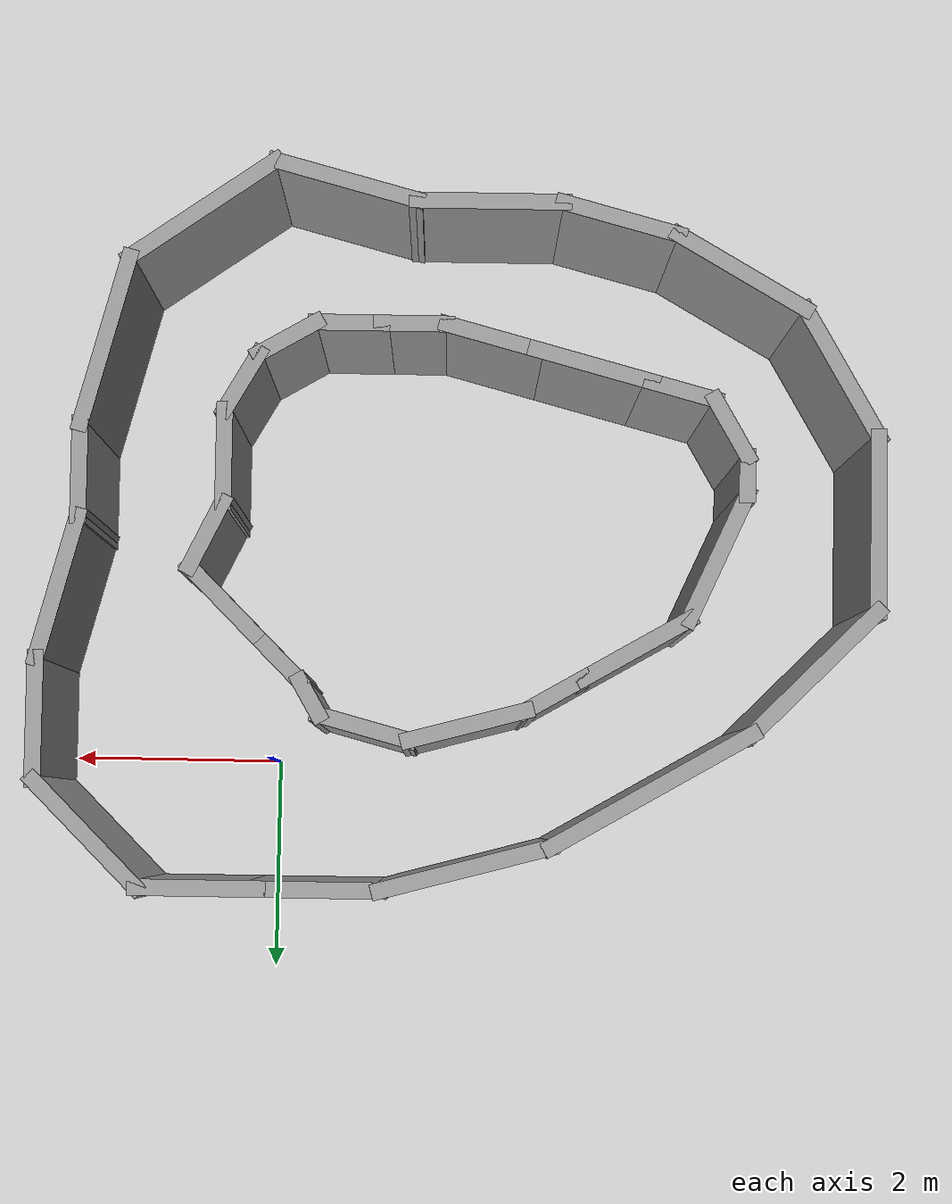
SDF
<sdf version="1.7">
 <world name="default">
  <light name="sun" type="directional">
   <pose>0 0 10 0 -0 0</pose>
   <diffuse>0.8 0.8 0.8 1</diffuse>
   <specular>0.2 0.2 0.2 1</specular>
   <attenuation>
    <range>1000</range>
    <constant>0.9</constant>
    <linear>0.01</linear>
    <quadratic>0.001</quadratic>
   </attenuation>
   <direction>-0.5 0.1 -0.9</direction>
   <spot><inner_angle>0</inner_angle><outer_angle>0</outer_angle><falloff>0</falloff></spot>
  </light>
  <model name="ground_plane">
   <static>1</static>
   <link name="link">
    <collision name="collision">
     <geometry><plane><normal>0 0 1</normal><size>100 100</size></plane></geometry>
     <surface><friction><ode><mu>100</mu><mu2>50</mu2></ode></friction></surface>
    </collision>
    <visual name="visual">
     <cast_shadows>0</cast_shadows>
     <geometry><plane><normal>0 0 1</normal><size>100 100</size></plane></geometry>
     <material>
      <script><uri>file://media/materials/scripts/gazebo.material</uri><name>Gazebo/Grey</name></script>
     </material>
    </visual>
   </link>
  </model>
  <gravity>0 0 -9.8</gravity>
  <magnetic_field>6e-06 2.3e-05 -4.2e-05</magnetic_field>
  <atmosphere type="adiabatic"/>
  <physics type="ode">
   <max_step_size>0.001</max_step_size>
   <real_time_factor>1</real_time_factor>
   <real_time_update_rate>1000</real_time_update_rate>
  </physics>
  <scene><ambient>0.4 0.4 0.4 1</ambient><background>0.7 0.7 0.7 1</background><shadows>1</shadows></scene>
  <audio><device>default</device></audio>
  <spherical_coordinates>
   <surface_model>EARTH_WGS84</surface_model>
   <latitude_deg>0</latitude_deg>
   <longitude_deg>0</longitude_deg>
   <elevation>0</elevation>
   <heading_deg>0</heading_deg>
  </spherical_coordinates>
  <model name="my_building_0">
   <pose>-1.72697 -2.13842 0 0 -0 0</pose>
   <link name="Wall_49">
    <collision name="Wall_49_Collision">
     <geometry><box><size>1.75 0.15 2.5</size></box></geometry>
     <pose>0 0 1.25 0 -0 0</pose>
    </collision>
    <visual name="Wall_49_Visual">
     <pose>0 0 1.25 0 -0 0</pose>
     <geometry><box><size>1.75 0.15 2.5</size></box></geometry>
     <material>
      <script><uri>file://media/materials/scripts/gazebo.material</uri><name>Gazebo/Grey</name></script>
      <ambient>1 1 1 1</ambient>
     </material>
     <meta><layer>0</layer></meta>
    </visual>
    <pose>3.26859 -1.64532 0 0 -0 1.309</pose>
   </link>
   <link name="Wall_50">
    <collision name="Wall_50_Collision">
     <geometry><box><size>1 0.15 2.5</size></box></geometry>
     <pose>0 0 1.25 0 -0 0</pose>
    </collision>
    <visual name="Wall_50_Visual">
     <pose>0 0 1.25 0 -0 0</pose>
     <geometry><box><size>1 0.15 2.5</size></box></geometry>
     <material>
      <script><uri>file://media/materials/scripts/gazebo.material</uri><name>Gazebo/Grey</name></script>
      <ambient>1 1 1 1</ambient>
     </material>
     <meta><layer>0</layer></meta>
    </visual>
    <pose>3.47564 -0.44758 0 0 -0 1.5708</pose>
   </link>
   <link name="Wall_51">
    <collision name="Wall_51_Collision">
     <geometry><box><size>1.5 0.15 2.5</size></box></geometry>
     <pose>0 0 1.25 0 -0 0</pose>
    </collision>
    <visual name="Wall_51_Visual">
     <pose>0 0 1.25 0 -0 0</pose>
     <geometry><box><size>1.5 0.15 2.5</size></box></geometry>
     <material>
      <script><uri>file://media/materials/scripts/gazebo.material</uri><name>Gazebo/Grey</name></script>
      <ambient>1 1 1 1</ambient>
     </material>
     <meta><layer>0</layer></meta>
    </visual>
    <pose>3.65035 0.62942 0 0 -0 1.309</pose>
   </link>
   <link name="Wall_52">
    <collision name="Wall_52_Collision">
     <geometry><box><size>1.25 0.15 2.5</size></box></geometry>
     <pose>0 0 1.25 0 -0 0</pose>
    </collision>
    <visual name="Wall_52_Visual">
     <pose>0 0 1.25 0 -0 0</pose>
     <geometry><box><size>1.25 0.15 2.5</size></box></geometry>
     <material>
      <script><uri>file://media/materials/scripts/gazebo.material</uri><name>Gazebo/Grey</name></script>
      <ambient>1 1 1 1</ambient>
     </material>
     <meta><layer>0</layer></meta>
    </visual>
    <pose>3.82505 1.83142 0 0 -0 1.5708</pose>
   </link>
   <link name="Wall_53">
    <collision name="Wall_53_Collision">
     <geometry><box><size>1.5 0.15 2.5</size></box></geometry>
     <pose>0 0 1.25 0 -0 0</pose>
    </collision>
    <visual name="Wall_53_Visual">
     <pose>0 0 1.25 0 -0 0</pose>
     <geometry><box><size>1.5 0.15 2.5</size></box></geometry>
     <material>
      <script><uri>file://media/materials/scripts/gazebo.material</uri><name>Gazebo/Grey</name></script>
      <ambient>1 1 1 1</ambient>
     </material>
     <meta><layer>0</layer></meta>
    </visual>
    <pose>3.34775 2.85872 0 0 -0 2.35619</pose>
   </link>
   <link name="Wall_54">
    <collision name="Wall_54_Collision">
     <geometry><box><size>1.25 0.15 2.5</size></box></geometry>
     <pose>0 0 1.25 0 -0 0</pose>
    </collision>
    <visual name="Wall_54_Visual">
     <pose>0 0 1.25 0 -0 0</pose>
     <geometry><box><size>1.25 0.15 2.5</size></box></geometry>
     <material>
      <script><uri>file://media/materials/scripts/gazebo.material</uri><name>Gazebo/Grey</name></script>
      <ambient>1 1 1 1</ambient>
     </material>
     <meta><layer>0</layer></meta>
    </visual>
    <pose>2.32046 3.33601 0 0 -0 3.14159</pose>
   </link>
   <link name="Wall_55">
    <collision name="Wall_55_Collision">
     <geometry><box><size>1.25 0.15 2.5</size></box></geometry>
     <pose>0 0 1.25 0 -0 0</pose>
    </collision>
    <visual name="Wall_55_Visual">
     <pose>0 0 1.25 0 -0 0</pose>
     <geometry><box><size>1.25 0.15 2.5</size></box></geometry>
     <material>
      <script><uri>file://media/materials/scripts/gazebo.material</uri><name>Gazebo/Grey</name></script>
      <ambient>1 1 1 1</ambient>
     </material>
     <meta><layer>0</layer></meta>
    </visual>
    <pose>1.22046 3.33601 0 0 -0 3.14159</pose>
   </link>
   <link name="Wall_56">
    <collision name="Wall_56_Collision">
     <geometry><box><size>1.75 0.15 2.5</size></box></geometry>
     <pose>0 0 1.25 0 -0 0</pose>
    </collision>
    <visual name="Wall_56_Visual">
     <pose>0 0 1.25 0 -0 0</pose>
     <geometry><box><size>1.75 0.15 2.5</size></box></geometry>
     <material>
      <script><uri>file://media/materials/scripts/gazebo.material</uri><name>Gazebo/Grey</name></script>
      <ambient>1 1 1 1</ambient>
     </material>
     <meta><layer>0</layer></meta>
    </visual>
    <pose>-0.102285 3.12896 0 0 -0 -2.87979</pose>
   </link>
   <link name="Wall_57">
    <collision name="Wall_57_Collision">
     <geometry><box><size>2.25 0.15 2.5</size></box></geometry>
     <pose>0 0 1.25 0 -0 0</pose>
    </collision>
    <visual name="Wall_57_Visual">
     <pose>0 0 1.25 0 -0 0</pose>
     <geometry><box><size>2.25 0.15 2.5</size></box></geometry>
     <material>
      <script><uri>file://media/materials/scripts/gazebo.material</uri><name>Gazebo/Grey</name></script>
      <ambient>1 1 1 1</ambient>
     </material>
     <meta><layer>0</layer></meta>
    </visual>
    <pose>-1.78435 2.3969 0 0 -0 -2.61799</pose>
   </link>
   <link name="Wall_58">
    <collision name="Wall_58_Collision">
     <geometry><box><size>1.75 0.15 2.5</size></box></geometry>
     <pose>0 0 1.25 0 -0 0</pose>
    </collision>
    <visual name="Wall_58_Visual">
     <pose>0 0 1.25 0 -0 0</pose>
     <geometry><box><size>1.75 0.15 2.5</size></box></geometry>
     <material>
      <script><uri>file://media/materials/scripts/gazebo.material</uri><name>Gazebo/Grey</name></script>
      <ambient>1 1 1 1</ambient>
     </material>
     <meta><layer>0</layer></meta>
    </visual>
    <pose>-3.25936 1.30622 0 0 -0 -2.35619</pose>
   </link>
   <link name="Wall_59">
    <collision name="Wall_59_Collision">
     <geometry><box><size>1.75 0.15 2.5</size></box></geometry>
     <pose>0 0 1.25 0 -0 0</pose>
    </collision>
    <visual name="Wall_59_Visual">
     <pose>0 0 1.25 0 -0 0</pose>
     <geometry><box><size>1.75 0.15 2.5</size></box></geometry>
     <material>
      <script><uri>file://media/materials/scripts/gazebo.material</uri><name>Gazebo/Grey</name></script>
      <ambient>1 1 1 1</ambient>
     </material>
     <meta><layer>0</layer></meta>
    </visual>
    <pose>-3.82505 -0.059468 0 0 -0 -1.5708</pose>
   </link>
   <link name="Wall_60">
    <collision name="Wall_60_Collision">
     <geometry><box><size>1.5 0.15 2.5</size></box></geometry>
     <pose>0 0 1.25 0 -0 0</pose>
    </collision>
    <visual name="Wall_60_Visual">
     <pose>0 0 1.25 0 -0 0</pose>
     <geometry><box><size>1.5 0.15 2.5</size></box></geometry>
     <material>
      <script><uri>file://media/materials/scripts/gazebo.material</uri><name>Gazebo/Grey</name></script>
      <ambient>1 1 1 1</ambient>
     </material>
     <meta><layer>0</layer></meta>
    </visual>
    <pose>-3.48755 -1.44403 0 0 -0 -1.0472</pose>
   </link>
   <link name="Wall_61">
    <collision name="Wall_61_Collision">
     <geometry><box><size>1.5 0.15 2.5</size></box></geometry>
     <pose>0 0 1.25 0 -0 0</pose>
    </collision>
    <visual name="Wall_61_Visual">
     <pose>0 0 1.25 0 -0 0</pose>
     <geometry><box><size>1.5 0.15 2.5</size></box></geometry>
     <material>
      <script><uri>file://media/materials/scripts/gazebo.material</uri><name>Gazebo/Grey</name></script>
      <ambient>1 1 1 1</ambient>
     </material>
     <meta><layer>0</layer></meta>
    </visual>
    <pose>-2.56548 -2.3661 0 0 -0 -0.523599</pose>
   </link>
   <link name="Wall_62">
    <collision name="Wall_62_Collision">
     <geometry><box><size>1.25 0.15 2.5</size></box></geometry>
     <pose>0 0 1.25 0 -0 0</pose>
    </collision>
    <visual name="Wall_62_Visual">
     <pose>0 0 1.25 0 -0 0</pose>
     <geometry><box><size>1.25 0.15 2.5</size></box></geometry>
     <material>
      <script><uri>file://media/materials/scripts/gazebo.material</uri><name>Gazebo/Grey</name></script>
      <ambient>1 1 1 1</ambient>
     </material>
     <meta><layer>0</layer></meta>
    </visual>
    <pose>-1.44966 -2.84595 0 0 -0 -0.261799</pose>
   </link>
   <link name="Wall_63">
    <collision name="Wall_63_Collision">
     <geometry><box><size>1.5 0.15 2.5</size></box></geometry>
     <pose>0 0 1.25 0 -0 0</pose>
    </collision>
    <visual name="Wall_63_Visual">
     <pose>0 0 1.25 0 -0 0</pose>
     <geometry><box><size>1.5 0.15 2.5</size></box></geometry>
     <material>
      <script><uri>file://media/materials/scripts/gazebo.material</uri><name>Gazebo/Grey</name></script>
      <ambient>1 1 1 1</ambient>
     </material>
     <meta><layer>0</layer></meta>
    </visual>
    <pose>-0.243397 -2.9883 0 0 -0 0</pose>
   </link>
   <link name="Wall_64">
    <collision name="Wall_64_Collision">
     <geometry><box><size>1.5 0.15 2.5</size></box></geometry>
     <pose>0 0 1.25 0 -0 0</pose>
    </collision>
    <visual name="Wall_64_Visual">
     <pose>0 0 1.25 0 -0 0</pose>
     <geometry><box><size>1.5 0.15 2.5</size></box></geometry>
     <material>
      <script><uri>file://media/materials/scripts/gazebo.material</uri><name>Gazebo/Grey</name></script>
      <ambient>1 1 1 1</ambient>
     </material>
     <meta><layer>0</layer></meta>
    </visual>
    <pose>1.0836 -3.16301 0 0 -0 -0.261799</pose>
   </link>
   <link name="Wall_65">
    <collision name="Wall_65_Collision">
     <geometry><box><size>1.76364 0.15 2.5</size></box></geometry>
     <pose>0 0 1.25 0 -0 0</pose>
    </collision>
    <visual name="Wall_65_Visual">
     <pose>0 0 1.25 0 -0 0</pose>
     <geometry><box><size>1.76364 0.15 2.5</size></box></geometry>
     <material>
      <script><uri>file://media/materials/scripts/gazebo.material</uri><name>Gazebo/Grey</name></script>
      <ambient>1 1 1 1</ambient>
     </material>
     <meta><layer>0</layer></meta>
    </visual>
    <pose>2.39857 -2.87789 0 0 -0 0.606408</pose>
   </link>
   <link name="Wall_71">
    <collision name="Wall_71_Collision">
     <geometry><box><size>1 0.15 2.5</size></box></geometry>
     <pose>0 0 1.25 0 -0 0</pose>
    </collision>
    <visual name="Wall_71_Visual">
     <pose>0 0 1.25 0 -0 0</pose>
     <geometry><box><size>1 0.15 2.5</size></box></geometry>
     <material>
      <script><uri>file://media/materials/scripts/gazebo.material</uri><name>Gazebo/Grey</name></script>
      <ambient>1 1 1 1</ambient>
     </material>
     <meta><layer>0</layer></meta>
    </visual>
    <pose>2.156 -0.594198 0 0 -0 -1.5708</pose>
   </link>
   <link name="Wall_72">
    <collision name="Wall_72_Collision">
     <geometry><box><size>0.75 0.15 2.5</size></box></geometry>
     <pose>0 0 1.25 0 -0 0</pose>
    </collision>
    <visual name="Wall_72_Visual">
     <pose>0 0 1.25 0 -0 0</pose>
     <geometry><box><size>0.75 0.15 2.5</size></box></geometry>
     <material>
      <script><uri>file://media/materials/scripts/gazebo.material</uri><name>Gazebo/Grey</name></script>
      <ambient>1 1 1 1</ambient>
     </material>
     <meta><layer>0</layer></meta>
    </visual>
    <pose>2.006 -1.27901 0 0 -0 -2.0944</pose>
   </link>
   <link name="Wall_73">
    <collision name="Wall_73_Collision">
     <geometry><box><size>0.75 0.15 2.5</size></box></geometry>
     <pose>0 0 1.25 0 -0 0</pose>
    </collision>
    <visual name="Wall_73_Visual">
     <pose>0 0 1.25 0 -0 0</pose>
     <geometry><box><size>0.75 0.15 2.5</size></box></geometry>
     <material>
      <script><uri>file://media/materials/scripts/gazebo.material</uri><name>Gazebo/Grey</name></script>
      <ambient>1 1 1 1</ambient>
     </material>
     <meta><layer>0</layer></meta>
    </visual>
    <pose>1.59619 -1.68881 0 0 -0 -2.61799</pose>
   </link>
   <link name="Wall_74">
    <collision name="Wall_74_Collision">
     <geometry><box><size>0.75 0.15 2.5</size></box></geometry>
     <pose>0 0 1.25 0 -0 0</pose>
    </collision>
    <visual name="Wall_74_Visual">
     <pose>0 0 1.25 0 -0 0</pose>
     <geometry><box><size>0.75 0.15 2.5</size></box></geometry>
     <material>
      <script><uri>file://media/materials/scripts/gazebo.material</uri><name>Gazebo/Grey</name></script>
      <ambient>1 1 1 1</ambient>
     </material>
     <meta><layer>0</layer></meta>
    </visual>
    <pose>1.03638 -1.83881 0 0 -0 3.14159</pose>
   </link>
   <link name="Wall_75">
    <collision name="Wall_75_Collision">
     <geometry><box><size>0.75 0.15 2.5</size></box></geometry>
     <pose>0 0 1.25 0 -0 0</pose>
    </collision>
    <visual name="Wall_75_Visual">
     <pose>0 0 1.25 0 -0 0</pose>
     <geometry><box><size>0.75 0.15 2.5</size></box></geometry>
     <material>
      <script><uri>file://media/materials/scripts/gazebo.material</uri><name>Gazebo/Grey</name></script>
      <ambient>1 1 1 1</ambient>
     </material>
     <meta><layer>0</layer></meta>
    </visual>
    <pose>0.436381 -1.83881 0 0 -0 3.14159</pose>
   </link>
   <link name="Wall_76">
    <collision name="Wall_76_Collision">
     <geometry><box><size>1 0.15 2.5</size></box></geometry>
     <pose>0 0 1.25 0 -0 0</pose>
    </collision>
    <visual name="Wall_76_Visual">
     <pose>0 0 1.25 0 -0 0</pose>
     <geometry><box><size>1 0.15 2.5</size></box></geometry>
     <material>
      <script><uri>file://media/materials/scripts/gazebo.material</uri><name>Gazebo/Grey</name></script>
      <ambient>1 1 1 1</ambient>
     </material>
     <meta><layer>0</layer></meta>
    </visual>
    <pose>-0.274138 -1.72882 0 0 -0 2.87979</pose>
   </link>
   <link name="Wall_77">
    <collision name="Wall_77_Collision">
     <geometry><box><size>1.25 0.15 2.5</size></box></geometry>
     <pose>0 0 1.25 0 -0 0</pose>
    </collision>
    <visual name="Wall_77_Visual">
     <pose>0 0 1.25 0 -0 0</pose>
     <geometry><box><size>1.25 0.15 2.5</size></box></geometry>
     <material>
      <script><uri>file://media/materials/scripts/gazebo.material</uri><name>Gazebo/Grey</name></script>
      <ambient>1 1 1 1</ambient>
     </material>
     <meta><layer>0</layer></meta>
    </visual>
    <pose>-1.21592 -1.47647 0 0 -0 2.87979</pose>
   </link>
   <link name="Wall_78">
    <collision name="Wall_78_Collision">
     <geometry><box><size>0.75 0.15 2.5</size></box></geometry>
     <pose>0 0 1.25 0 -0 0</pose>
    </collision>
    <visual name="Wall_78_Visual">
     <pose>0 0 1.25 0 -0 0</pose>
     <geometry><box><size>0.75 0.15 2.5</size></box></geometry>
     <material>
      <script><uri>file://media/materials/scripts/gazebo.material</uri><name>Gazebo/Grey</name></script>
      <ambient>1 1 1 1</ambient>
     </material>
     <meta><layer>0</layer></meta>
    </visual>
    <pose>-2.03695 -1.25647 0 0 -0 2.87979</pose>
   </link>
   <link name="Wall_79">
    <collision name="Wall_79_Collision">
     <geometry><box><size>0.75 0.15 2.5</size></box></geometry>
     <pose>0 0 1.25 0 -0 0</pose>
    </collision>
    <visual name="Wall_79_Visual">
     <pose>0 0 1.25 0 -0 0</pose>
     <geometry><box><size>0.75 0.15 2.5</size></box></geometry>
     <material>
      <script><uri>file://media/materials/scripts/gazebo.material</uri><name>Gazebo/Grey</name></script>
      <ambient>1 1 1 1</ambient>
     </material>
     <meta><layer>0</layer></meta>
    </visual>
    <pose>-2.47673 -0.919018 0 0 -0 2.0944</pose>
   </link>
   <link name="Wall_80">
    <collision name="Wall_80_Collision">
     <geometry><box><size>0.5 0.15 2.5</size></box></geometry>
     <pose>0 0 1.25 0 -0 0</pose>
    </collision>
    <visual name="Wall_80_Visual">
     <pose>0 0 1.25 0 -0 0</pose>
     <geometry><box><size>0.5 0.15 2.5</size></box></geometry>
     <material>
      <script><uri>file://media/materials/scripts/gazebo.material</uri><name>Gazebo/Grey</name></script>
      <ambient>1 1 1 1</ambient>
     </material>
     <meta><layer>0</layer></meta>
    </visual>
    <pose>-2.62673 -0.48421 0 0 -0 1.5708</pose>
   </link>
   <link name="Wall_83">
    <collision name="Wall_83_Collision">
     <geometry><box><size>1.25 0.15 2.5</size></box></geometry>
     <pose>0 0 1.25 0 -0 0</pose>
    </collision>
    <visual name="Wall_83_Visual">
     <pose>0 0 1.25 0 -0 0</pose>
     <geometry><box><size>1.25 0.15 2.5</size></box></geometry>
     <material>
      <script><uri>file://media/materials/scripts/gazebo.material</uri><name>Gazebo/Grey</name></script>
      <ambient>1 1 1 1</ambient>
     </material>
     <meta><layer>0</layer></meta>
    </visual>
    <pose>-1.6308 1.11579 0 0 -0 0.523599</pose>
   </link>
   <link name="Wall_84">
    <collision name="Wall_84_Collision">
     <geometry><box><size>0.75 0.15 2.5</size></box></geometry>
     <pose>0 0 1.25 0 -0 0</pose>
    </collision>
    <visual name="Wall_84_Visual">
     <pose>0 0 1.25 0 -0 0</pose>
     <geometry><box><size>0.75 0.15 2.5</size></box></geometry>
     <material>
      <script><uri>file://media/materials/scripts/gazebo.material</uri><name>Gazebo/Grey</name></script>
      <ambient>1 1 1 1</ambient>
     </material>
     <meta><layer>0</layer></meta>
    </visual>
    <pose>-0.894679 1.54079 0 0 -0 0.523599</pose>
   </link>
   <link name="Wall_85">
    <collision name="Wall_85_Collision">
     <geometry><box><size>1.25 0.15 2.5</size></box></geometry>
     <pose>0 0 1.25 0 -0 0</pose>
    </collision>
    <visual name="Wall_85_Visual">
     <pose>0 0 1.25 0 -0 0</pose>
     <geometry><box><size>1.25 0.15 2.5</size></box></geometry>
     <material>
      <script><uri>file://media/materials/scripts/gazebo.material</uri><name>Gazebo/Grey</name></script>
      <ambient>1 1 1 1</ambient>
     </material>
     <meta><layer>0</layer></meta>
    </visual>
    <pose>-0.103612 1.83314 0 0 -0 0.261799</pose>
   </link>
   <link name="Wall_86">
    <collision name="Wall_86_Collision">
     <geometry><box><size>1 0.15 2.5</size></box></geometry>
     <pose>0 0 1.25 0 -0 0</pose>
    </collision>
    <visual name="Wall_86_Visual">
     <pose>0 0 1.25 0 -0 0</pose>
     <geometry><box><size>1 0.15 2.5</size></box></geometry>
     <material>
      <script><uri>file://media/materials/scripts/gazebo.material</uri><name>Gazebo/Grey</name></script>
      <ambient>1 1 1 1</ambient>
     </material>
     <meta><layer>0</layer></meta>
    </visual>
    <pose>0.838165 1.86549 0 0 -0 -0.261799</pose>
   </link>
   <link name="Wall_87">
    <collision name="Wall_87_Collision">
     <geometry><box><size>0.5 0.15 2.5</size></box></geometry>
     <pose>0 0 1.25 0 -0 0</pose>
    </collision>
    <visual name="Wall_87_Visual">
     <pose>0 0 1.25 0 -0 0</pose>
     <geometry><box><size>0.5 0.15 2.5</size></box></geometry>
     <material>
      <script><uri>file://media/materials/scripts/gazebo.material</uri><name>Gazebo/Grey</name></script>
      <ambient>1 1 1 1</ambient>
     </material>
     <meta><layer>0</layer></meta>
    </visual>
    <pose>1.33618 1.60394 0 0 -0 -1.0472</pose>
   </link>
   <link name="Wall_88">
    <collision name="Wall_88_Collision">
     <geometry><box><size>0.75 0.15 2.5</size></box></geometry>
     <pose>0 0 1.25 0 -0 0</pose>
    </collision>
    <visual name="Wall_88_Visual">
     <pose>0 0 1.25 0 -0 0</pose>
     <geometry><box><size>0.75 0.15 2.5</size></box></geometry>
     <material>
      <script><uri>file://media/materials/scripts/gazebo.material</uri><name>Gazebo/Grey</name></script>
      <ambient>1 1 1 1</ambient>
     </material>
     <meta><layer>0</layer></meta>
    </visual>
    <pose>1.63582 1.24025 0 0 -0 -0.785398</pose>
   </link>
   <link name="Wall_89">
    <collision name="Wall_89_Collision">
     <geometry><box><size>1 0.15 2.5</size></box></geometry>
     <pose>0 0 1.25 0 -0 0</pose>
    </collision>
    <visual name="Wall_89_Visual">
     <pose>0 0 1.25 0 -0 0</pose>
     <geometry><box><size>1 0.15 2.5</size></box></geometry>
     <material>
      <script><uri>file://media/materials/scripts/gazebo.material</uri><name>Gazebo/Grey</name></script>
      <ambient>1 1 1 1</ambient>
     </material>
     <meta><layer>0</layer></meta>
    </visual>
    <pose>2.14847 0.727602 0 0 -0 -0.785398</pose>
   </link>
   <link name="Wall_90">
    <collision name="Wall_90_Collision">
     <geometry><box><size>0.814375 0.15 2.5</size></box></geometry>
     <pose>0 0 1.25 0 -0 0</pose>
    </collision>
    <visual name="Wall_90_Visual">
     <pose>0 0 1.25 0 -0 0</pose>
     <geometry><box><size>0.814375 0.15 2.5</size></box></geometry>
     <material>
      <script><uri>file://media/materials/scripts/gazebo.material</uri><name>Gazebo/Grey</name></script>
      <ambient>1 1 1 1</ambient>
     </material>
     <meta><layer>0</layer></meta>
    </visual>
    <pose>2.30249 0.128941 0 0 -0 -2.02751</pose>
   </link>
   <link name="Wall_92">
    <collision name="Wall_92_Collision">
     <geometry><box><size>1.41194 0.15 2.5</size></box></geometry>
     <pose>0 0 1.25 0 -0 0</pose>
    </collision>
    <visual name="Wall_92_Visual">
     <pose>0 0 1.25 0 -0 0</pose>
     <geometry><box><size>1.41194 0.15 2.5</size></box></geometry>
     <material>
      <script><uri>file://media/materials/scripts/gazebo.material</uri><name>Gazebo/Grey</name></script>
      <ambient>1 1 1 1</ambient>
     </material>
     <meta><layer>0</layer></meta>
    </visual>
    <pose>-2.36692 0.26579 0 0 -0 -1.99518</pose>
   </link>
   <static>1</static>
  </model>
 </world>
</sdf>
